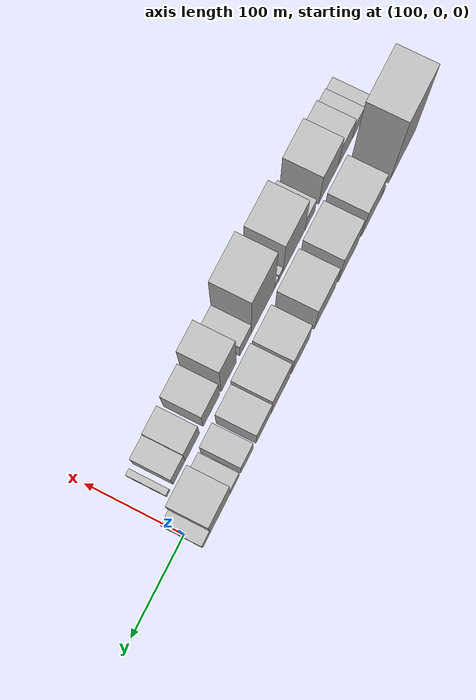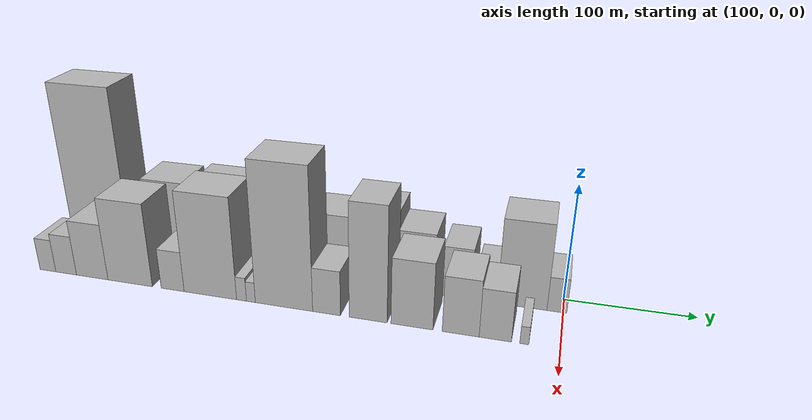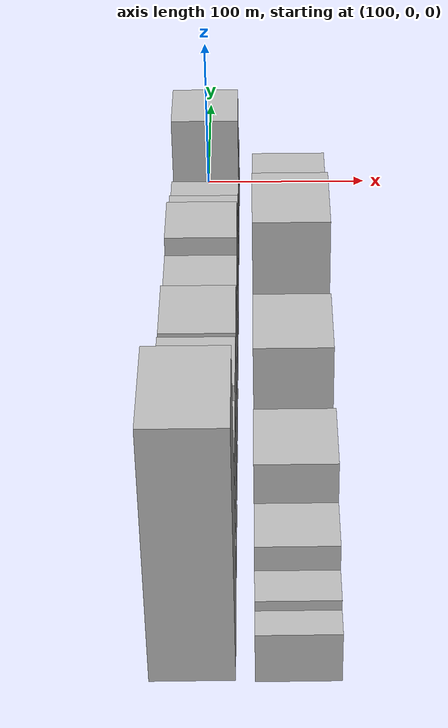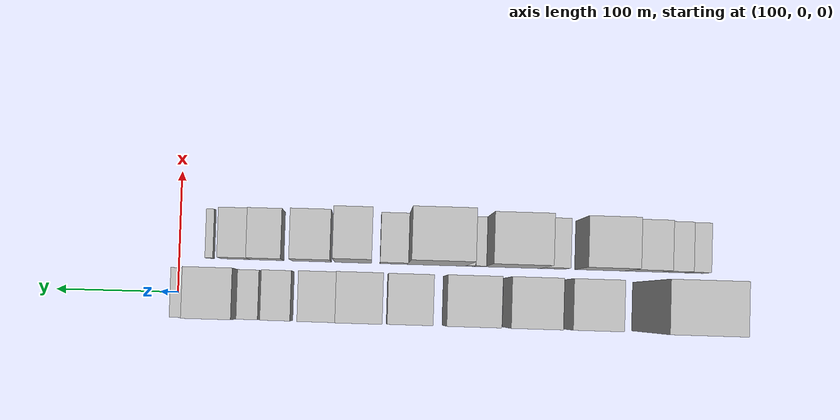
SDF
<sdf version="1.6">
 <world name="default">
  <model name="building_1">
   <static>1</static>
   <pose>100.0000 -402.5720 0 0.000000 0.000000 0.000000</pose>
   <link name="link">
    <pose>0 0 75.00 0 0 0</pose>
    <collision name="collision"><geometry><box><size>40.0000 56.8560 150.0000</size></box></geometry></collision>
    <visual name="visual">
     <cast_shadows>0</cast_shadows>
     <geometry><box><size>40.0000 56.8560 150.0000</size></box></geometry>
     <material>
      <script>
       <uri>model://HANNAS_wall/materials/scripts</uri>
       <uri>model://HANNAS_wall/materials/textures</uri>
       <name>vrc/HANNAS_wall</name>
      </script>
     </material>
    </visual>
   </link>
  </model>
  <model name="building_2">
   <static>1</static>
   <pose>100.0000 -359.8157 0 0.000000 0.000000 0.000000</pose>
   <link name="link">
    <pose>0 0 9.00 0 0 0</pose>
    <collision name="collision"><geometry><box><size>40.0000 8.6565 18.0000</size></box></geometry></collision>
    <visual name="visual">
     <cast_shadows>0</cast_shadows>
     <geometry><box><size>40.0000 8.6565 18.0000</size></box></geometry>
     <material>
      <script>
       <uri>model://HANNAS_wall/materials/scripts</uri>
       <uri>model://HANNAS_wall/materials/textures</uri>
       <name>vrc/HANNAS_wall</name>
      </script>
     </material>
    </visual>
   </link>
  </model>
  <model name="building_3">
   <static>1</static>
   <pose>100.0000 -335.6497 0 0.000000 0.000000 0.000000</pose>
   <link name="link">
    <pose>0 0 36.00 0 0 0</pose>
    <collision name="collision"><geometry><box><size>40.0000 39.6756 72.0000</size></box></geometry></collision>
    <visual name="visual">
     <cast_shadows>0</cast_shadows>
     <geometry><box><size>40.0000 39.6756 72.0000</size></box></geometry>
     <material>
      <script>
       <uri>model://HANNAS_wall/materials/scripts</uri>
       <uri>model://HANNAS_wall/materials/textures</uri>
       <name>vrc/HANNAS_wall</name>
      </script>
     </material>
    </visual>
   </link>
  </model>
  <model name="building_4">
   <static>1</static>
   <pose>100.0000 -287.6907 0 0.000000 0.000000 0.000000</pose>
   <link name="link">
    <pose>0 0 37.50 0 0 0</pose>
    <collision name="collision"><geometry><box><size>40.0000 40.2424 75.0000</size></box></geometry></collision>
    <visual name="visual">
     <cast_shadows>0</cast_shadows>
     <geometry><box><size>40.0000 40.2424 75.0000</size></box></geometry>
     <material>
      <script>
       <uri>model://HANNAS_wall/materials/scripts</uri>
       <uri>model://HANNAS_wall/materials/textures</uri>
       <name>vrc/HANNAS_wall</name>
      </script>
     </material>
    </visual>
   </link>
  </model>
  <model name="building_5">
   <static>1</static>
   <pose>100.0000 -239.2767 0 0.000000 0.000000 0.000000</pose>
   <link name="link">
    <pose>0 0 36.00 0 0 0</pose>
    <collision name="collision"><geometry><box><size>40.0000 42.5856 72.0000</size></box></geometry></collision>
    <visual name="visual">
     <cast_shadows>0</cast_shadows>
     <geometry><box><size>40.0000 42.5856 72.0000</size></box></geometry>
     <material>
      <script>
       <uri>model://HANNAS_wall/materials/scripts</uri>
       <uri>model://HANNAS_wall/materials/textures</uri>
       <name>vrc/HANNAS_wall</name>
      </script>
     </material>
    </visual>
   </link>
  </model>
  <model name="building_6">
   <static>1</static>
   <pose>100.0000 -190.0187 0 0.000000 0.000000 0.000000</pose>
   <link name="link">
    <pose>0 0 30.00 0 0 0</pose>
    <collision name="collision"><geometry><box><size>40.0000 35.9303 60.0000</size></box></geometry></collision>
    <visual name="visual">
     <cast_shadows>0</cast_shadows>
     <geometry><box><size>40.0000 35.9303 60.0000</size></box></geometry>
     <material>
      <script>
       <uri>model://HANNAS_wall/materials/scripts</uri>
       <uri>model://HANNAS_wall/materials/textures</uri>
       <name>vrc/HANNAS_wall</name>
      </script>
     </material>
    </visual>
   </link>
  </model>
  <model name="building_7">
   <static>1</static>
   <pose>100.0000 -149.6607 0 0.000000 0.000000 0.000000</pose>
   <link name="link">
    <pose>0 0 34.50 0 0 0</pose>
    <collision name="collision"><geometry><box><size>40.0000 36.7856 69.0000</size></box></geometry></collision>
    <visual name="visual">
     <cast_shadows>0</cast_shadows>
     <geometry><box><size>40.0000 36.7856 69.0000</size></box></geometry>
     <material>
      <script>
       <uri>model://HANNAS_wall/materials/scripts</uri>
       <uri>model://HANNAS_wall/materials/textures</uri>
       <name>vrc/HANNAS_wall</name>
      </script>
     </material>
    </visual>
   </link>
  </model>
  <model name="building_8">
   <static>1</static>
   <pose>100.0000 -116.1760 0 0.000000 0.000000 0.000000</pose>
   <link name="link">
    <pose>0 0 27.00 0 0 0</pose>
    <collision name="collision"><geometry><box><size>40.0000 30.1839 54.0000</size></box></geometry></collision>
    <visual name="visual">
     <cast_shadows>0</cast_shadows>
     <geometry><box><size>40.0000 30.1839 54.0000</size></box></geometry>
     <material>
      <script>
       <uri>model://HANNAS_wall/materials/scripts</uri>
       <uri>model://HANNAS_wall/materials/textures</uri>
       <name>vrc/HANNAS_wall</name>
      </script>
     </material>
    </visual>
   </link>
  </model>
  <model name="building_9">
   <static>1</static>
   <pose>100.0000 -83.1549 0 0.000000 0.000000 0.000000</pose>
   <link name="link">
    <pose>0 0 22.50 0 0 0</pose>
    <collision name="collision"><geometry><box><size>40.0000 23.8582 45.0000</size></box></geometry></collision>
    <visual name="visual">
     <cast_shadows>0</cast_shadows>
     <geometry><box><size>40.0000 23.8582 45.0000</size></box></geometry>
     <material>
      <script>
       <uri>model://HANNAS_wall/materials/scripts</uri>
       <uri>model://HANNAS_wall/materials/textures</uri>
       <name>vrc/HANNAS_wall</name>
      </script>
     </material>
    </visual>
   </link>
  </model>
  <model name="building_10">
   <static>1</static>
   <pose>100.0000 -59.6057 0 0.000000 0.000000 0.000000</pose>
   <link name="link">
    <pose>0 0 15.00 0 0 0</pose>
    <collision name="collision"><geometry><box><size>40.0000 17.2402 30.0000</size></box></geometry></collision>
    <visual name="visual">
     <cast_shadows>0</cast_shadows>
     <geometry><box><size>40.0000 17.2402 30.0000</size></box></geometry>
     <material>
      <script>
       <uri>model://HANNAS_wall/materials/scripts</uri>
       <uri>model://HANNAS_wall/materials/textures</uri>
       <name>vrc/HANNAS_wall</name>
      </script>
     </material>
    </visual>
   </link>
  </model>
  <model name="building_11">
   <static>1</static>
   <pose>100.0000 -31.7075 0 0.000000 0.000000 0.000000</pose>
   <link name="link">
    <pose>0 0 37.50 0 0 0</pose>
    <collision name="collision"><geometry><box><size>40.0000 38.5562 75.0000</size></box></geometry></collision>
    <visual name="visual">
     <cast_shadows>0</cast_shadows>
     <geometry><box><size>40.0000 38.5562 75.0000</size></box></geometry>
     <material>
      <script>
       <uri>model://HANNAS_wall/materials/scripts</uri>
       <uri>model://HANNAS_wall/materials/textures</uri>
       <name>vrc/HANNAS_wall</name>
      </script>
     </material>
    </visual>
   </link>
  </model>
  <model name="building_12">
   <static>1</static>
   <pose>100.0000 -4.8689 0 0.000000 0.000000 0.000000</pose>
   <link name="link">
    <pose>0 0 15.00 0 0 0</pose>
    <collision name="collision"><geometry><box><size>40.0000 15.1210 30.0000</size></box></geometry></collision>
    <visual name="visual">
     <cast_shadows>0</cast_shadows>
     <geometry><box><size>40.0000 15.1210 30.0000</size></box></geometry>
     <material>
      <script>
       <uri>model://HANNAS_wall/materials/scripts</uri>
       <uri>model://HANNAS_wall/materials/textures</uri>
       <name>vrc/HANNAS_wall</name>
      </script>
     </material>
    </visual>
   </link>
  </model>
  <model name="building_26">
   <static>1</static>
   <pose>149.0000 -424.2974 0 0.000000 0.000000 0.000000</pose>
   <link name="link">
    <pose>0 0 15.00 0 0 0</pose>
    <collision name="collision"><geometry><box><size>40.0000 15.4053 30.0000</size></box></geometry></collision>
    <visual name="visual">
     <cast_shadows>0</cast_shadows>
     <geometry><box><size>40.0000 15.4053 30.0000</size></box></geometry>
     <material>
      <script>
       <uri>model://HANNAS_wall/materials/scripts</uri>
       <uri>model://HANNAS_wall/materials/textures</uri>
       <name>vrc/HANNAS_wall</name>
      </script>
     </material>
    </visual>
   </link>
  </model>
  <model name="building_27">
   <static>1</static>
   <pose>149.0000 -406.6686 0 0.000000 0.000000 0.000000</pose>
   <link name="link">
    <pose>0 0 18.00 0 0 0</pose>
    <collision name="collision"><geometry><box><size>40.0000 19.8522 36.0000</size></box></geometry></collision>
    <visual name="visual">
     <cast_shadows>0</cast_shadows>
     <geometry><box><size>40.0000 19.8522 36.0000</size></box></geometry>
     <material>
      <script>
       <uri>model://HANNAS_wall/materials/scripts</uri>
       <uri>model://HANNAS_wall/materials/textures</uri>
       <name>vrc/HANNAS_wall</name>
      </script>
     </material>
    </visual>
   </link>
  </model>
  <model name="building_28">
   <static>1</static>
   <pose>149.0000 -381.8740 0 0.000000 0.000000 0.000000</pose>
   <link name="link">
    <pose>0 0 25.50 0 0 0</pose>
    <collision name="collision"><geometry><box><size>40.0000 29.7371 51.0000</size></box></geometry></collision>
    <visual name="visual">
     <cast_shadows>0</cast_shadows>
     <geometry><box><size>40.0000 29.7371 51.0000</size></box></geometry>
     <material>
      <script>
       <uri>model://HANNAS_wall/materials/scripts</uri>
       <uri>model://HANNAS_wall/materials/textures</uri>
       <name>vrc/HANNAS_wall</name>
      </script>
     </material>
    </visual>
   </link>
  </model>
  <model name="building_29">
   <static>1</static>
   <pose>149.0000 -346.5387 0 0.000000 0.000000 0.000000</pose>
   <link name="link">
    <pose>0 0 37.50 0 0 0</pose>
    <collision name="collision"><geometry><box><size>40.0000 40.9333 75.0000</size></box></geometry></collision>
    <visual name="visual">
     <cast_shadows>0</cast_shadows>
     <geometry><box><size>40.0000 40.9333 75.0000</size></box></geometry>
     <material>
      <script>
       <uri>model://HANNAS_wall/materials/scripts</uri>
       <uri>model://HANNAS_wall/materials/textures</uri>
       <name>vrc/HANNAS_wall</name>
      </script>
     </material>
    </visual>
   </link>
  </model>
  <model name="building_30">
   <static>1</static>
   <pose>149.0000 -307.7992 0 0.000000 0.000000 0.000000</pose>
   <link name="link">
    <pose>0 0 18.00 0 0 0</pose>
    <collision name="collision"><geometry><box><size>40.0000 20.5458 36.0000</size></box></geometry></collision>
    <visual name="visual">
     <cast_shadows>0</cast_shadows>
     <geometry><box><size>40.0000 20.5458 36.0000</size></box></geometry>
     <material>
      <script>
       <uri>model://HANNAS_wall/materials/scripts</uri>
       <uri>model://HANNAS_wall/materials/textures</uri>
       <name>vrc/HANNAS_wall</name>
      </script>
     </material>
    </visual>
   </link>
  </model>
  <model name="building_31">
   <static>1</static>
   <pose>149.0000 -274.6189 0 0.000000 0.000000 0.000000</pose>
   <link name="link">
    <pose>0 0 45.00 0 0 0</pose>
    <collision name="collision"><geometry><box><size>40.0000 45.8149 90.0000</size></box></geometry></collision>
    <visual name="visual">
     <cast_shadows>0</cast_shadows>
     <geometry><box><size>40.0000 45.8149 90.0000</size></box></geometry>
     <material>
      <script>
       <uri>model://HANNAS_wall/materials/scripts</uri>
       <uri>model://HANNAS_wall/materials/textures</uri>
       <name>vrc/HANNAS_wall</name>
      </script>
     </material>
    </visual>
   </link>
  </model>
  <model name="building_32">
   <static>1</static>
   <pose>149.0000 -247.4831 0 0.000000 0.000000 0.000000</pose>
   <link name="link">
    <pose>0 0 10.50 0 0 0</pose>
    <collision name="collision"><geometry><box><size>40.0000 8.4566 21.0000</size></box></geometry></collision>
    <visual name="visual">
     <cast_shadows>0</cast_shadows>
     <geometry><box><size>40.0000 8.4566 21.0000</size></box></geometry>
     <material>
      <script>
       <uri>model://HANNAS_wall/materials/scripts</uri>
       <uri>model://HANNAS_wall/materials/textures</uri>
       <name>vrc/HANNAS_wall</name>
      </script>
     </material>
    </visual>
   </link>
  </model>
  <model name="building_33">
   <static>1</static>
   <pose>149.0000 -239.4771 0 0.000000 0.000000 0.000000</pose>
   <link name="link">
    <pose>0 0 9.00 0 0 0</pose>
    <collision name="collision"><geometry><box><size>40.0000 7.5555 18.0000</size></box></geometry></collision>
    <visual name="visual">
     <cast_shadows>0</cast_shadows>
     <geometry><box><size>40.0000 7.5555 18.0000</size></box></geometry>
     <material>
      <script>
       <uri>model://HANNAS_wall/materials/scripts</uri>
       <uri>model://HANNAS_wall/materials/textures</uri>
       <name>vrc/HANNAS_wall</name>
      </script>
     </material>
    </visual>
   </link>
  </model>
  <model name="building_34">
   <static>1</static>
   <pose>149.0000 -211.8277 0 0.000000 0.000000 0.000000</pose>
   <link name="link">
    <pose>0 0 61.50 0 0 0</pose>
    <collision name="collision"><geometry><box><size>40.0000 47.7434 123.0000</size></box></geometry></collision>
    <visual name="visual">
     <cast_shadows>0</cast_shadows>
     <geometry><box><size>40.0000 47.7434 123.0000</size></box></geometry>
     <material>
      <script>
       <uri>model://HANNAS_wall/materials/scripts</uri>
       <uri>model://HANNAS_wall/materials/textures</uri>
       <name>vrc/HANNAS_wall</name>
      </script>
     </material>
    </visual>
   </link>
  </model>
  <model name="building_35">
   <static>1</static>
   <pose>149.0000 -176.6722 0 0.000000 0.000000 0.000000</pose>
   <link name="link">
    <pose>0 0 19.50 0 0 0</pose>
    <collision name="collision"><geometry><box><size>40.0000 22.5675 39.0000</size></box></geometry></collision>
    <visual name="visual">
     <cast_shadows>0</cast_shadows>
     <geometry><box><size>40.0000 22.5675 39.0000</size></box></geometry>
     <material>
      <script>
       <uri>model://HANNAS_wall/materials/scripts</uri>
       <uri>model://HANNAS_wall/materials/textures</uri>
       <name>vrc/HANNAS_wall</name>
      </script>
     </material>
    </visual>
   </link>
  </model>
  <model name="building_36">
   <static>1</static>
   <pose>149.0000 -143.4260 0 0.000000 0.000000 0.000000</pose>
   <link name="link">
    <pose>0 0 49.50 0 0 0</pose>
    <collision name="collision"><geometry><box><size>40.0000 29.9249 99.0000</size></box></geometry></collision>
    <visual name="visual">
     <cast_shadows>0</cast_shadows>
     <geometry><box><size>40.0000 29.9249 99.0000</size></box></geometry>
     <material>
      <script>
       <uri>model://HANNAS_wall/materials/scripts</uri>
       <uri>model://HANNAS_wall/materials/textures</uri>
       <name>vrc/HANNAS_wall</name>
      </script>
     </material>
    </visual>
   </link>
  </model>
  <model name="building_37">
   <static>1</static>
   <pose>149.0000 -109.3196 0 0.000000 0.000000 0.000000</pose>
   <link name="link">
    <pose>0 0 28.50 0 0 0</pose>
    <collision name="collision"><geometry><box><size>40.0000 32.2880 57.0000</size></box></geometry></collision>
    <visual name="visual">
     <cast_shadows>0</cast_shadows>
     <geometry><box><size>40.0000 32.2880 57.0000</size></box></geometry>
     <material>
      <script>
       <uri>model://HANNAS_wall/materials/scripts</uri>
       <uri>model://HANNAS_wall/materials/textures</uri>
       <name>vrc/HANNAS_wall</name>
      </script>
     </material>
    </visual>
   </link>
  </model>
  <model name="building_38">
   <static>1</static>
   <pose>149.0000 -72.3829 0 0.000000 0.000000 0.000000</pose>
   <link name="link">
    <pose>0 0 24.00 0 0 0</pose>
    <collision name="collision"><geometry><box><size>40.0000 27.5853 48.0000</size></box></geometry></collision>
    <visual name="visual">
     <cast_shadows>0</cast_shadows>
     <geometry><box><size>40.0000 27.5853 48.0000</size></box></geometry>
     <material>
      <script>
       <uri>model://HANNAS_wall/materials/scripts</uri>
       <uri>model://HANNAS_wall/materials/textures</uri>
       <name>vrc/HANNAS_wall</name>
      </script>
     </material>
    </visual>
   </link>
  </model>
  <model name="building_39">
   <static>1</static>
   <pose>149.0000 -46.7991 0 0.000000 0.000000 0.000000</pose>
   <link name="link">
    <pose>0 0 21.00 0 0 0</pose>
    <collision name="collision"><geometry><box><size>40.0000 23.5822 42.0000</size></box></geometry></collision>
    <visual name="visual">
     <cast_shadows>0</cast_shadows>
     <geometry><box><size>40.0000 23.5822 42.0000</size></box></geometry>
     <material>
      <script>
       <uri>model://HANNAS_wall/materials/scripts</uri>
       <uri>model://HANNAS_wall/materials/textures</uri>
       <name>vrc/HANNAS_wall</name>
      </script>
     </material>
    </visual>
   </link>
  </model>
  <model name="building_40">
   <static>1</static>
   <pose>149.0000 -25.7494 0 0.000000 0.000000 0.000000</pose>
   <link name="link">
    <pose>0 0 7.50 0 0 0</pose>
    <collision name="collision"><geometry><box><size>40.0000 6.5171 15.0000</size></box></geometry></collision>
    <visual name="visual">
     <cast_shadows>0</cast_shadows>
     <geometry><box><size>40.0000 6.5171 15.0000</size></box></geometry>
     <material>
      <script>
       <uri>model://HANNAS_wall/materials/scripts</uri>
       <uri>model://HANNAS_wall/materials/textures</uri>
       <name>vrc/HANNAS_wall</name>
      </script>
     </material>
    </visual>
   </link>
  </model>
 </world>
</sdf>
